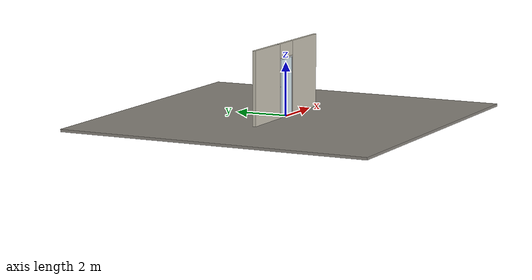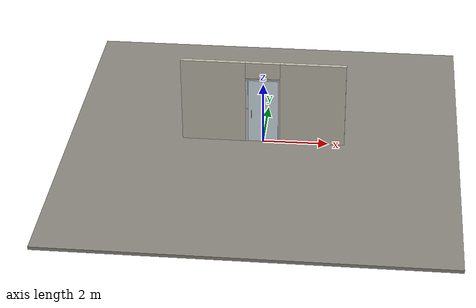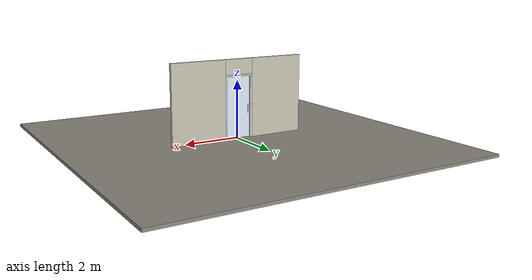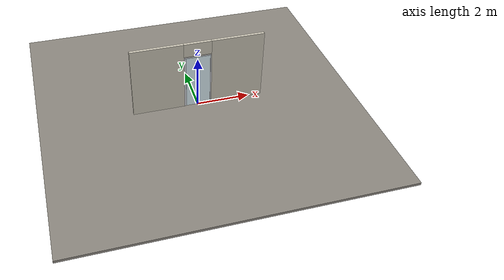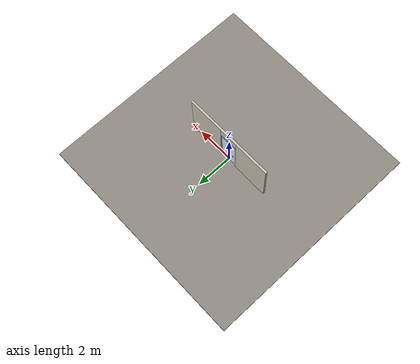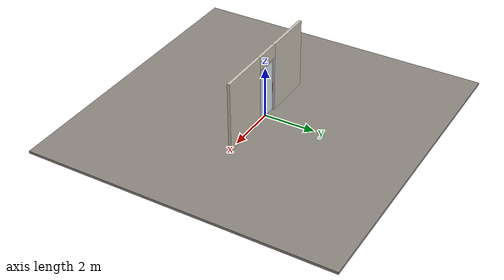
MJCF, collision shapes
<?xml version="1.0" ?>
<mujoco model="db0544_swing_single_minimal">
  <compiler angle="radian" meshdir="../../hardware" texturedir="../../textures" autolimits="true" inertiafromgeom="false"/>
  <option timestep="0.002" integrator="implicitfast" cone="elliptic" impratio="10" noslip_iterations="3">
    <flag multiccd="enable"/>
  </option>
  <size memory="16M"/>
  <default>
    <geom condim="4" solref="0.005 1" solimp="0.95 0.99 0.001"/>
    <joint solreflimit="0.005 1" solimplimit="0.95 0.99 0.001"/>
    <tendon solreflimit="0.005 1"/>
    <equality solref="0.002 1"/>
  </default>
  <visual>
    <headlight ambient="0.4 0.4 0.4" diffuse="0.7 0.7 0.7" specular="0.2 0.2 0.2"/>
    <quality shadowsize="4096"/>
    <map znear="0.01" zfar="60"/>
  </visual>
  <asset>
    <mesh name="pull_f8d79d6331" file="pull_f8d79d6331.obj"/>
    <material name="mat_floor" rgba="0.55 0.53 0.5 1" specular="0.2" shininess="0.15" reflectance="0"/>
    <material name="mat_wall" rgba="0.78 0.76 0.7 1" specular="0.2" shininess="0.1" reflectance="0"/>
    <material name="mat_leaf" rgba="0.85 0.92 0.95 0.25" specular="0.2" shininess="0.95" reflectance="0.1"/>
    <material name="mat_glass_leaf" rgba="0.85 0.92 0.95 0.25" specular="0.2" shininess="0.95" reflectance="0.1"/>
    <material name="mat_patch" rgba="0.75 0.76 0.77 1" specular="0.8" shininess="0.65" reflectance="0.4"/>
    <material name="mat_hinge" rgba="0.65 0.66 0.68 1" specular="0.74" shininess="0.5" reflectance="0.36"/>
    <material name="mat_op_stainless" rgba="0.75 0.76 0.77 1" specular="0.8" shininess="0.65" reflectance="0.4"/>
    <material name="mat_deadbolt" rgba="0.85 0.66 0.3 1" specular="0.8" shininess="0.75" reflectance="0.4"/>
    <material name="mat_frame" rgba="0.8 0.81 0.83 1" specular="0.8" shininess="0.6" reflectance="0.4"/>
    <material name="mat_closer" rgba="0.75 0.76 0.77 1" specular="0.8" shininess="0.65" reflectance="0.4"/>
    <texture name="skybox" type="skybox" builtin="gradient" rgb1="0.6 0.7 0.85" rgb2="0.9 0.92 0.95" width="256" height="256"/>
  </asset>
  <worldbody>
    <light name="sun" pos="1.5 -2.5 4" dir="-0.3 0.5 -0.8" directional="true" diffuse="0.8 0.8 0.8" specular="0.3 0.3 0.3" castshadow="true"/>
    <light name="fill" pos="-1.5 2.5 3" dir="0.3 -0.5 -0.7" directional="true" diffuse="0.35 0.35 0.4" castshadow="false"/>
    <camera name="robot_view" pos="0 -2.609812 1.812087" xyaxes="1 0 0 0 0.26963 0.962964" fovy="52"/>
    <camera name="far_view" pos="0 2.665812 1.812087" xyaxes="-1 0 0 0 -0.26963 0.962964" fovy="52"/>
    <camera name="iso" pos="-2.004737 -2.187762 2.234138" xyaxes="0.741536 -0.670913 0 0.242917 0.268487 0.932151" fovy="46"/>
    <camera name="detail_handle" pos="-0.173 -0.8975 1.296" xyaxes="0.97561 0.219512 0 -0.070934 0.315262 0.94635" fovy="38"/>
    <geom name="floor" type="box" size="6 6 0.05" pos="0 0 -0.05" material="mat_floor" group="0" contype="1" conaffinity="1" friction="0.8 0.005 0.0001" density="2400"/>
    <geom name="wall_left" type="box" size="0.9815 0.0575 1.3735" pos="-1.5185 0.028 1.3735" material="mat_wall" group="0" contype="1" conaffinity="1" friction="0.6 0.005 0.0001" density="800"/>
    <geom name="wall_right" type="box" size="0.9965 0.0575 1.3735" pos="1.5035 0.028 1.3735" material="mat_wall" group="0" contype="1" conaffinity="1" friction="0.6 0.005 0.0001" density="800"/>
    <geom name="wall_header" type="box" size="0.522 0.0575 0.2625" pos="-0.015 0.028 2.4845" material="mat_wall" group="0" contype="1" conaffinity="1" friction="0.6 0.005 0.0001" density="800"/>
    <geom name="jamb_hinge" type="box" size="0.0225 0.0575 1.0735" pos="0.4845 0.028 1.0735" material="mat_frame" group="0" contype="1" conaffinity="1" friction="0.6 0.005 0.0001" density="300"/>
    <geom name="strike_1156_wall_n" type="box" size="0.0375 0.038 0.0155" pos="-0.4995 0.0475 1.156" material="mat_frame" group="0" contype="1" conaffinity="1" friction="0.6 0.005 0.0001" density="300"/>
    <geom name="strike_1156_wall_p" type="box" size="0.0375 0.01 0.0155" pos="-0.4995 -0.0195 1.156" material="mat_frame" group="0" contype="1" conaffinity="1" friction="0.6 0.005 0.0001" density="300"/>
    <geom name="strike_1156_back" type="box" size="0.0228 0.0095 0.0155" pos="-0.5142 0 1.156" material="mat_frame" group="0" contype="1" conaffinity="1" friction="0.6 0.005 0.0001" density="300"/>
    <geom name="jamb_strike_0" type="box" size="0.0375 0.0575 0.57025" pos="-0.4995 0.028 0.57025" material="mat_frame" group="0" contype="1" conaffinity="1" friction="0.6 0.005 0.0001" density="300"/>
    <geom name="jamb_strike_1" type="box" size="0.0375 0.0575 0.48775" pos="-0.4995 0.028 1.65925" material="mat_frame" group="0" contype="1" conaffinity="1" friction="0.6 0.005 0.0001" density="300"/>
    <geom name="jamb_head" type="box" size="0.522 0.0575 0.0225" pos="-0.015 0.028 2.1695" material="mat_frame" group="0" contype="1" conaffinity="1" friction="0.6 0.005 0.0001" density="300"/>
    <geom name="head_stud" type="box" size="0.522 0.0575 0.015" pos="-0.015 0.028 2.207" material="mat_wall" group="0" contype="1" conaffinity="1" friction="0.6 0.005 0.0001" density="500"/>
    <site name="approach_point" pos="0 -1.5 0" quat="1 0 0 0" size="0.05" rgba="0.2 0.9 0.2 0.5" group="4"/>
    <site name="goal_point" pos="0 1.5 0" quat="1 0 0 0" size="0.05" rgba="0.2 0.9 0.2 0.5" group="4"/>
    <site name="door_plane_center" pos="0 0 1.0735" quat="1 0 0 0" size="0.02" rgba="0.2 0.9 0.2 0.5" group="4"/>
    <body name="leaf" pos="0.462 0 0">
      <inertial pos="-0.473596 0 1.074194" mass="98.210936" quat="0.500518 -0.500518 -0.499481 -0.499481" diaginertia="7.026864142 36.223049846 43.169320441"/>
      <joint name="leaf_hinge" type="hinge" axis="0 0 1" pos="-0.003 -0.0295 0" limited="true" range="0 2.443461" solreflimit="0.02 1" damping="8.268966" frictionloss="2.092271" stiffness="17.118706" springref="-2.550426" armature="0.02"/>
      <geom name="leaf_glass" type="box" size="0.457 0.0225 1.067" pos="-0.463 0 1.076" material="mat_glass_leaf" group="0" contype="1" conaffinity="1" friction="0.4 0.005 0.0001" density="1"/>
      <geom name="leaf_pull_n" type="mesh" mesh="pull_f8d79d6331" pos="-0.815 -0.0225 1.016" quat="0 0 -0.707107 0.707107" material="mat_op_stainless" group="1" contype="0" conaffinity="0" density="3000"/>
      <geom name="leaf_pull_col_n" type="capsule" size="0.0125 0.13" pos="-0.815 -0.0975 1.016" material="mat_op_stainless" group="3" contype="1" conaffinity="1" rgba="0.8 0.3 0.3 0.25" friction="0.7 0.01 0.0001" density="3000"/>
      <geom name="leaf_pull_p" type="mesh" mesh="pull_f8d79d6331" pos="-0.815 0.0225 1.016" quat="0 0 0.707107 0.707107" material="mat_op_stainless" group="1" contype="0" conaffinity="0" density="3000"/>
      <geom name="leaf_pull_col_p" type="capsule" size="0.0125 0.13" pos="-0.815 0.0975 1.016" material="mat_op_stainless" group="3" contype="1" conaffinity="1" rgba="0.8 0.3 0.3 0.25" friction="0.7 0.01 0.0001" density="3000"/>
      <site name="leaf_pull_grip_n" pos="-0.815 -0.0975 1.016" quat="1 0 0 0" size="0.012" rgba="0.2 0.9 0.2 0.5" group="4"/>
      <site name="leaf_pull_grip_p" pos="-0.815 0.0975 1.016" quat="1 0 0 0" size="0.012" rgba="0.2 0.9 0.2 0.5" group="4"/>
      <site name="leaf_edge_mid" pos="-0.92 0 1.067" quat="1 0 0 0" size="0.02" rgba="0.2 0.9 0.2 0.5" group="4"/>
    </body>
  </worldbody>
  <sensor>
    <jointpos name="leaf_hinge_pos" joint="leaf_hinge"/>
    <jointvel name="leaf_hinge_vel" joint="leaf_hinge"/>
  </sensor>
</mujoco>
